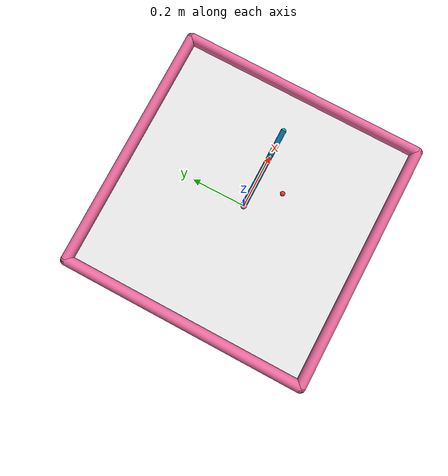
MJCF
<mujoco model="3joint_reacher">
  <compiler angle="radian" inertiafromgeom="true"/>
  <default>
    <joint armature="1" damping="1" limited="true"/>
    <geom contype="1" conaffinity="1" friction="1 0.1 0.1" rgba="0.7 0.7 0 1" density="1000"/>
  </default>

  <option gravity="0 0 -9.81" integrator="RK4" timestep="0.002"/>
  <worldbody>
    <geom conaffinity="0" contype="0" name="ground" pos="0 0 0" rgba="0.9 0.9 0.9 1" size="0.45000000000000007 0.45000000000000007 10" type="plane"/>
    <geom conaffinity="0" contype="0" fromto="-0.45000000000000007 -0.45000000000000007 .01 0.45000000000000007 -0.45000000000000007 .01" name="sideS" rgba="0.9 0.4 0.6 1" size=".02" type="capsule"/>
    <geom conaffinity="0" contype="0" fromto=" 0.45000000000000007 -0.45000000000000007 .01 0.45000000000000007  0.45000000000000007 .01" name="sideE" rgba="0.9 0.4 0.6 1" size=".02" type="capsule"/>
    <geom conaffinity="0" contype="0" fromto="-0.45000000000000007  0.45000000000000007 .01 0.45000000000000007  0.45000000000000007 .01" name="sideN" rgba="0.9 0.4 0.6 1" size=".02" type="capsule"/>
    <geom conaffinity="0" contype="0" fromto="-0.45000000000000007 -0.45000000000000007 .01 -0.45000000000000007 0.45000000000000007 .01" name="sideW" rgba="0.9 0.4 0.6 1" size=".02" type="capsule"/>

    <geom conaffinity="0" contype="0" fromto="0 0 0 0 0 0.02" name="root" rgba="0.9 0.4 0.6 1" size=".011" type="cylinder"/>

    <body name="body0" pos="0 0 .01">
      <geom fromto="0 0 0 0.1 0 0" name="link0" rgba="0.0 0.4 0.6 1" size=".01" type="capsule" />
      <joint axis="0 0 1" limited="false" name="joint0" pos="0 0 0" type="hinge"/>

       <body name="body1" pos="0.1 0 0">
        <joint axis="0 0 1" limited="true" name="joint1" pos="0 0 0" range="-2.5 2.5" type="hinge"/>
        <geom fromto="0 0 0 0.1 0 0" name="link1" rgba="0.0 0.4 0.6 1" size=".01" type="capsule" />

            <body name="body2" pos="0.1 0 0">
                    <joint axis="0 0 1" limited="true" name="joint2" pos="0 0 0" range="-2.5 2.5" type="hinge"/>
                    <geom fromto="0 0 0 0.1 0 0" name="link2" rgba="0.0 0.4 0.6 1" size=".01" type="capsule" />

                    <body name="fingertip" pos="0.1 0 0">
                      <geom name="fingertip" pos="0 0 0" rgba="0.0 0.8 0.6 1" size=".01" type="sphere"/>
                    </body>
                  </body>

      </body>

    </body>

    <body name="target" pos=".1 -.1 .01">
      <joint armature="0" axis="1 0 0" damping="0" limited="true" name="target_x" pos="0 0 0" range="-0.4050000000000001 0.4050000000000001" ref=".1" stiffness="0" type="slide"/>
      <joint armature="0" axis="0 1 0" damping="0" limited="true" name="target_y" pos="0 0 0" range="-0.4050000000000001 0.4050000000000001" ref="-.1" stiffness="0" type="slide"/>
      <geom conaffinity="0" contype="0" name="target" pos="0 0 0" rgba="0.9 0.2 0.2 1" size=".009" type="sphere"/>
    </body>
  </worldbody>
  <actuator>
    <motor ctrllimited="true" ctrlrange="-1.0 1.0" gear="100.0" joint="joint0"/>
    <motor ctrllimited="true" ctrlrange="-1.0 1.0" gear="100.0" joint="joint1"/>
    <motor ctrllimited="true" ctrlrange="-1.0 1.0" gear="100.0" joint="joint2"/>
  </actuator>
</mujoco>
